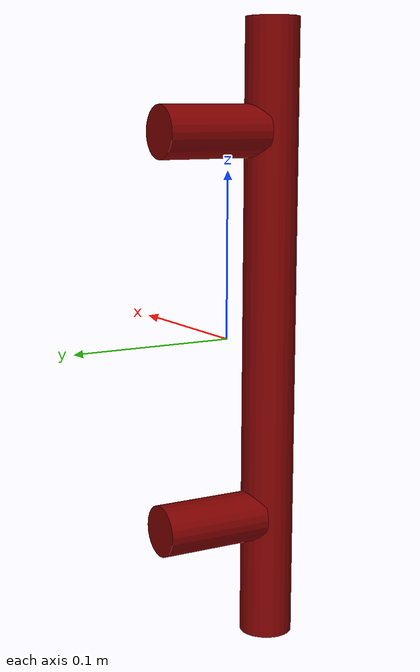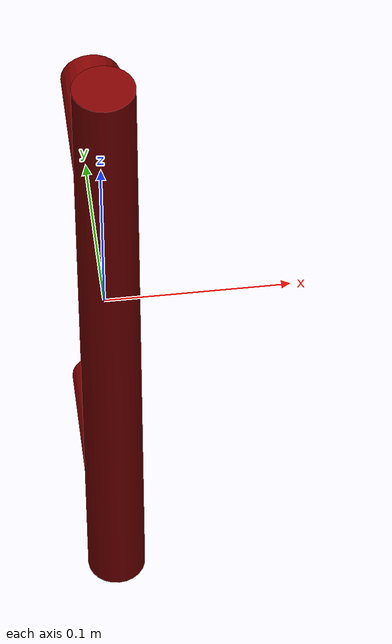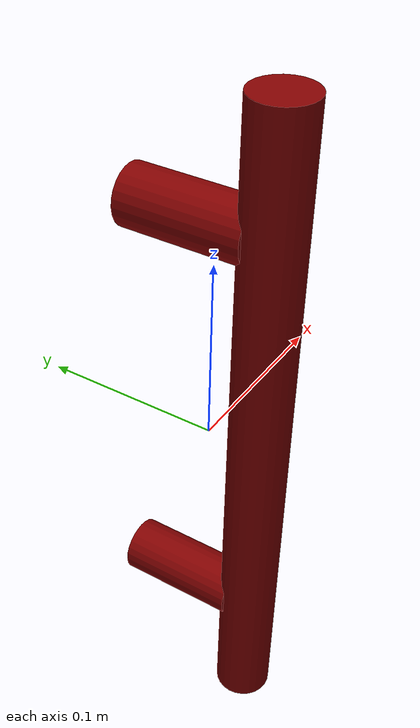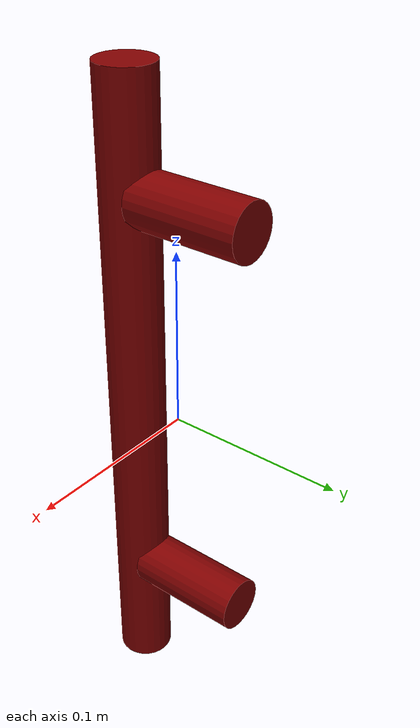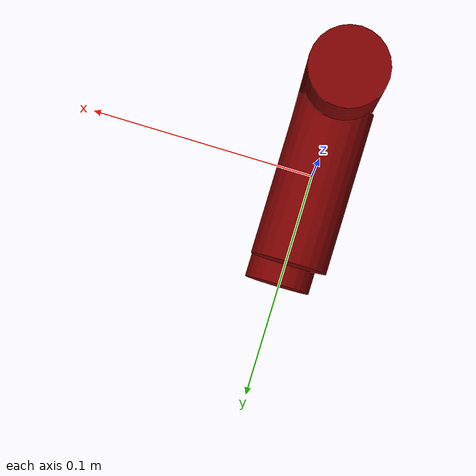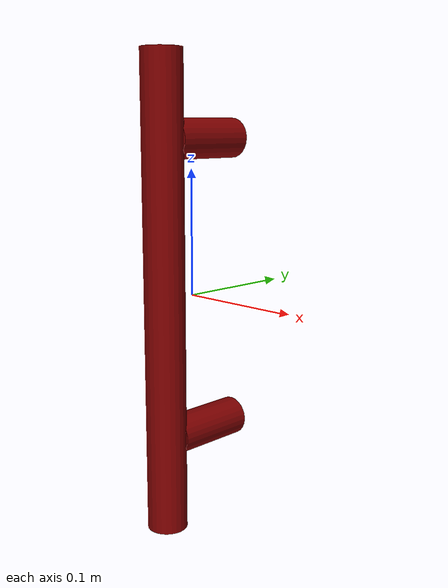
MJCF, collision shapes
<?xml version='1.0' encoding='UTF-8'?>
<mujoco model="model">
  <option timestep="0.002" gravity="0.0 0.0 -9.81"/>
  <compiler angle="radian"/>
  <asset>
    <mesh file="visuals/CabinetHandle027.obj" name="CabinetHandle027_vis"/>
    <texture file="visuals/T_BC001.png" name="tex" type="2d"/>
    <material name="mat" rgba="1 1 1 1.0" texture="tex" shininess="0.5" specular="0.3103448502657381"/>
  </asset>
  <default>
    <default class="visual">
      <geom conaffinity="0" contype="0" group="1" type="mesh"/>
    </default>
    <default class="collision">
      <geom group="0" rgba="0.5 0 0 0.5" density="1.0" solref="0.004 1" solimp="0.998 0.998 0.001"/>
    </default>
    <default class="spawn">
      <geom group="0" rgba="1 1 1 0.5" contype="0" conaffinity="0"/>
      <site group="0" rgba="1 1 1 0.5"/>
    </default>
    <default class="region">
      <geom group="1" conaffinity="0" contype="0" rgba="0 1 0 0" mass="0"/>
    </default>
  </default>
  <worldbody>
    <body>
      <body name="object">
        <geom mesh="CabinetHandle027_vis" type="mesh" solimp="0.998 0.998 0.001" solref="0.001 1" friction="0.95 0.3 0.1" class="visual" material="mat"/>
        <geom type="cylinder" pos="-0.00002082 0.01224075 0.12296216" size="0.01566506177186966 0.03343303129076958" quat="0.7071067094802856 0.7071068286895752 0.0 0.0" class="collision"/>
        <geom type="cylinder" pos="0.00000000 -0.02979600 0.00000232" size="0.016121163964271545 0.1888597458600998" quat="1.0 0.0 0.0 0.0" class="collision"/>
        <geom type="cylinder" pos="-0.00002082 0.01224075 -0.11252593" size="0.01566506177186966 0.03343303129076958" quat="0.7071067094802856 0.7071068286895752 0.0 0.0" class="collision"/>
        <geom class="region" name="reg_main" type="box" pos="-2.500000000071889e-08 2.550000000010877e-07 -2.1000000000048757e-07" size="0.017032195 0.046726094999999995 0.19035937"/>
      </body>
    </body>
  </worldbody>
  <actuator/>
</mujoco>
